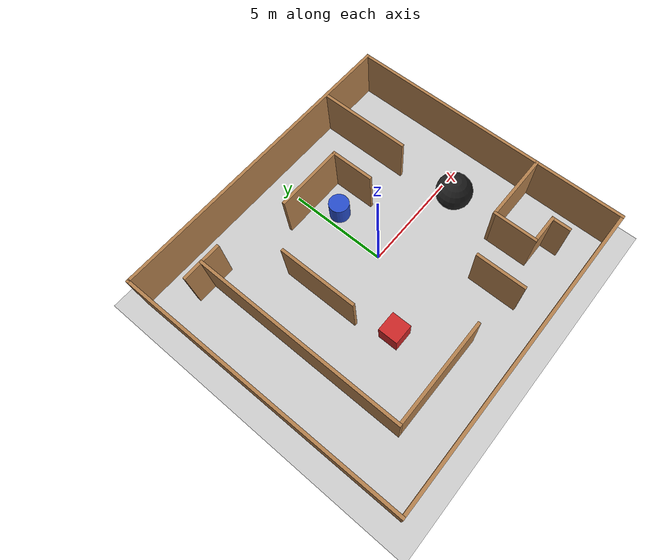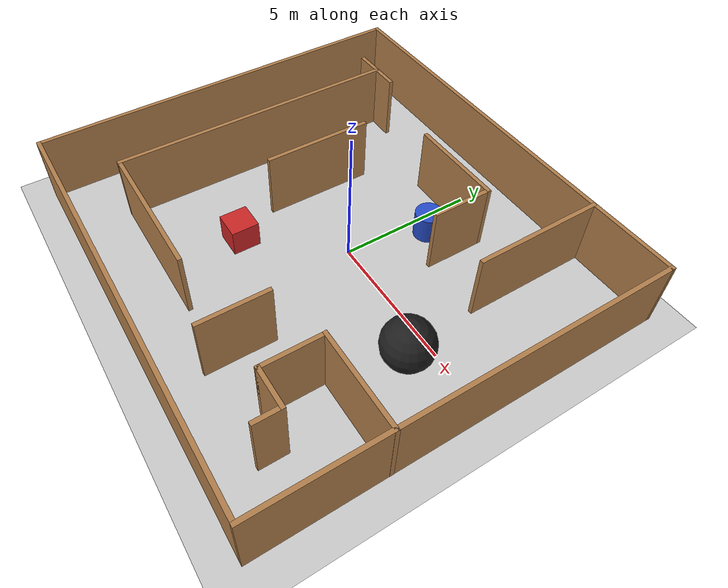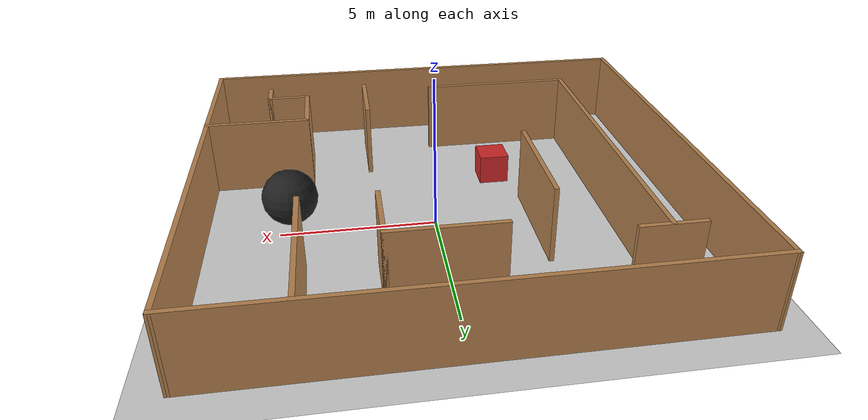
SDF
<sdf version="1.7">
 <world name="default">
  <light name="sun" type="directional">
   <pose>0 0 10 0 -0 0</pose>
   <diffuse>0.8 0.8 0.8 1</diffuse>
   <specular>0.2 0.2 0.2 1</specular>
   <attenuation>
    <range>1000</range>
    <constant>0.9</constant>
    <linear>0.01</linear>
    <quadratic>0.001</quadratic>
   </attenuation>
   <direction>-0.5 0.1 -0.9</direction>
   <spot><inner_angle>0</inner_angle><outer_angle>0</outer_angle><falloff>0</falloff></spot>
  </light>
  <model name="ground_plane">
   <static>1</static>
   <link name="link">
    <collision name="collision">
     <geometry><plane><normal>0 0 1</normal><size>100 100</size></plane></geometry>
     <surface>
      <contact><collide_bitmask>65535</collide_bitmask></contact>
      <friction><ode><mu>100</mu><mu2>50</mu2></ode></friction>
     </surface>
    </collision>
    <visual name="visual">
     <cast_shadows>0</cast_shadows>
     <geometry><plane><normal>0 0 1</normal><size>100 100</size></plane></geometry>
     <material>
      <script><uri>file://media/materials/scripts/gazebo.material</uri><name>Gazebo/Grey</name></script>
     </material>
    </visual>
   </link>
  </model>
  <gravity>0 0 -9.8</gravity>
  <magnetic_field>6e-06 2.3e-05 -4.2e-05</magnetic_field>
  <atmosphere type="adiabatic"/>
  <physics type="ode">
   <max_step_size>0.001</max_step_size>
   <real_time_factor>1</real_time_factor>
   <real_time_update_rate>1000</real_time_update_rate>
  </physics>
  <scene><ambient>0.4 0.4 0.4 1</ambient><background>0.7 0.7 0.7 1</background><shadows>1</shadows></scene>
  <spherical_coordinates>
   <surface_model>EARTH_WGS84</surface_model>
   <latitude_deg>0</latitude_deg>
   <longitude_deg>0</longitude_deg>
   <elevation>0</elevation>
   <heading_deg>0</heading_deg>
  </spherical_coordinates>
  <model name="map_eddie_bot">
   <pose>-0.440167 -0.562829 0 0 -0 0</pose>
   <link name="Wall_30">
    <collision name="Wall_30_Collision">
     <geometry><box><size>14.5741 0.15 2.5</size></box></geometry>
     <pose>0 0 1.25 0 -0 0</pose>
    </collision>
    <visual name="Wall_30_Visual">
     <pose>0 0 1.25 0 -0 0</pose>
     <geometry><box><size>14.5741 0.15 2.5</size></box></geometry>
     <material>
      <script><uri>file://media/materials/scripts/gazebo.material</uri><name>Gazebo/Wood</name></script>
      <ambient>1 1 1 1</ambient>
     </material>
     <meta><layer>0</layer></meta>
    </visual>
    <pose>7.78261 0 0 0 -0 -1.57322</pose>
   </link>
   <link name="Wall_35">
    <collision name="Wall_35_Collision">
     <geometry><box><size>15.75 0.15 2.5</size></box></geometry>
     <pose>0 0 1.25 0 -0 0</pose>
    </collision>
    <visual name="Wall_35_Visual">
     <pose>0 0 1.25 0 -0 0</pose>
     <geometry><box><size>15.75 0.15 2.5</size></box></geometry>
     <material>
      <script><uri>file://media/materials/scripts/gazebo.material</uri><name>Gazebo/Wood</name></script>
      <ambient>1 1 1 1</ambient>
     </material>
     <meta><layer>0</layer></meta>
    </visual>
    <pose>0.000104 7.21205 0 0 -0 3.14159</pose>
   </link>
   <link name="Wall_36">
    <collision name="Wall_36_Collision">
     <geometry><box><size>14.5743 0.15 2.5</size></box></geometry>
     <pose>0 0 1.25 0 -0 0</pose>
    </collision>
    <visual name="Wall_36_Visual">
     <pose>0 0 1.25 0 -0 0</pose>
     <geometry><box><size>14.5743 0.15 2.5</size></box></geometry>
     <material>
      <script><uri>file://media/materials/scripts/gazebo.material</uri><name>Gazebo/Wood</name></script>
      <ambient>1 1 1 1</ambient>
     </material>
     <meta><layer>0</layer></meta>
    </visual>
    <pose>-7.76235 0 0 0 -0 -1.56559</pose>
   </link>
   <link name="Wall_38">
    <collision name="Wall_38_Collision">
     <geometry><box><size>15.5 0.15 2.5</size></box></geometry>
     <pose>0 0 1.25 0 -0 0</pose>
    </collision>
    <visual name="Wall_38_Visual">
     <pose>0 0 1.25 0 -0 0</pose>
     <geometry><box><size>15.5 0.15 2.5</size></box></geometry>
     <material>
      <script><uri>file://media/materials/scripts/gazebo.material</uri><name>Gazebo/Wood</name></script>
      <ambient>1 1 1 1</ambient>
     </material>
     <meta><layer>0</layer></meta>
    </visual>
    <pose>-0.049797 -7.21205 0 0 -0 0</pose>
   </link>
   <link name="Wall_40">
    <collision name="Wall_40_Collision">
     <geometry><box><size>10.75 0.15 2.5</size></box></geometry>
     <pose>0 0 1.25 0 -0 0</pose>
    </collision>
    <visual name="Wall_40_Visual">
     <pose>0 0 1.25 0 -0 0</pose>
     <geometry><box><size>10.75 0.15 2.5</size></box></geometry>
     <material>
      <script><uri>file://media/materials/scripts/gazebo.material</uri><name>Gazebo/Wood</name></script>
      <ambient>1 1 1 1</ambient>
     </material>
     <meta><layer>0</layer></meta>
    </visual>
    <pose>-5.27932 0.1577 0 0 -0 -1.5708</pose>
   </link>
   <link name="Wall_42">
    <collision name="Wall_42_Collision">
     <geometry><box><size>5.25 0.15 2.5</size></box></geometry>
     <pose>0 0 1.25 0 -0 0</pose>
    </collision>
    <visual name="Wall_42_Visual">
     <pose>0 0 1.25 0 -0 0</pose>
     <geometry><box><size>5.25 0.15 2.5</size></box></geometry>
     <material>
      <script><uri>file://media/materials/scripts/gazebo.material</uri><name>Gazebo/Wood</name></script>
      <ambient>1 1 1 1</ambient>
     </material>
     <meta><layer>0</layer></meta>
    </visual>
    <pose>-2.72932 -5.1423 0 0 -0 0</pose>
   </link>
   <link name="Wall_44">
    <collision name="Wall_44_Collision">
     <geometry><box><size>2.5 0.15 2.5</size></box></geometry>
     <pose>0 0 1.25 0 -0 0</pose>
    </collision>
    <visual name="Wall_44_Visual">
     <pose>0 0 1.25 0 -0 0</pose>
     <geometry><box><size>2.5 0.15 2.5</size></box></geometry>
     <material>
      <script><uri>file://media/materials/scripts/gazebo.material</uri><name>Gazebo/Wood</name></script>
      <ambient>1 1 1 1</ambient>
     </material>
     <meta><layer>0</layer></meta>
    </visual>
    <pose>2.30443 -4.54475 0 0 -0 -1.5708</pose>
   </link>
   <link name="Wall_48">
    <collision name="Wall_48_Collision">
     <geometry><box><size>4.75 0.15 2.5</size></box></geometry>
     <pose>0 0 1.25 0 -0 0</pose>
    </collision>
    <visual name="Wall_48_Visual">
     <pose>0 0 1.25 0 -0 0</pose>
     <geometry><box><size>4.75 0.15 2.5</size></box></geometry>
     <material>
      <script><uri>file://media/materials/scripts/gazebo.material</uri><name>Gazebo/Wood</name></script>
      <ambient>1 1 1 1</ambient>
     </material>
     <meta><layer>0</layer></meta>
    </visual>
    <pose>4.66715 4.89888 0 0 -0 -1.5708</pose>
   </link>
   <link name="Wall_50">
    <collision name="Wall_50_Collision">
     <geometry><box><size>4 0.15 2.5</size></box></geometry>
     <pose>0 0 1.25 0 -0 0</pose>
    </collision>
    <visual name="Wall_50_Visual">
     <pose>0 0 1.25 0 -0 0</pose>
     <geometry><box><size>4 0.15 2.5</size></box></geometry>
     <material>
      <script><uri>file://media/materials/scripts/gazebo.material</uri><name>Gazebo/Wood</name></script>
      <ambient>1 1 1 1</ambient>
     </material>
     <meta><layer>0</layer></meta>
    </visual>
    <pose>-2.7243 1.25877 0 0 -0 -1.5708</pose>
   </link>
   <link name="Wall_52">
    <collision name="Wall_52_Collision">
     <geometry><box><size>3.5 0.15 2.5</size></box></geometry>
     <pose>0 0 1.25 0 -0 0</pose>
    </collision>
    <visual name="Wall_52_Visual">
     <pose>0 0 1.25 0 -0 0</pose>
     <geometry><box><size>3.5 0.15 2.5</size></box></geometry>
     <material>
      <script><uri>file://media/materials/scripts/gazebo.material</uri><name>Gazebo/Wood</name></script>
      <ambient>1 1 1 1</ambient>
     </material>
     <meta><layer>0</layer></meta>
    </visual>
    <pose>6.1064 -2.77451 0 0 -0 3.14159</pose>
   </link>
   <link name="Wall_53">
    <collision name="Wall_53_Collision">
     <geometry><box><size>2.25 0.15 2.5</size></box></geometry>
     <pose>0 0 1.25 0 -0 0</pose>
    </collision>
    <visual name="Wall_53_Visual">
     <pose>0 0 1.25 0 -0 0</pose>
     <geometry><box><size>2.25 0.15 2.5</size></box></geometry>
     <material>
      <script><uri>file://media/materials/scripts/gazebo.material</uri><name>Gazebo/Wood</name></script>
      <ambient>1 1 1 1</ambient>
     </material>
     <meta><layer>0</layer></meta>
    </visual>
    <pose>4.4314 -3.82451 0 0 -0 -1.5708</pose>
   </link>
   <link name="Wall_54">
    <collision name="Wall_54_Collision">
     <geometry><box><size>1.5 0.15 2.5</size></box></geometry>
     <pose>0 0 1.25 0 -0 0</pose>
    </collision>
    <visual name="Wall_54_Visual">
     <pose>0 0 1.25 0 -0 0</pose>
     <geometry><box><size>1.5 0.15 2.5</size></box></geometry>
     <material>
      <script><uri>file://media/materials/scripts/gazebo.material</uri><name>Gazebo/Wood</name></script>
      <ambient>1 1 1 1</ambient>
     </material>
     <meta><layer>0</layer></meta>
    </visual>
    <pose>5.1064 -4.87451 0 0 -0 0</pose>
   </link>
   <link name="Wall_55">
    <collision name="Wall_55_Collision">
     <geometry><box><size>1 0.15 2.5</size></box></geometry>
     <pose>0 0 1.25 0 -0 0</pose>
    </collision>
    <visual name="Wall_55_Visual">
     <pose>0 0 1.25 0 -0 0</pose>
     <geometry><box><size>1 0.15 2.5</size></box></geometry>
     <material>
      <script><uri>file://media/materials/scripts/gazebo.material</uri><name>Gazebo/Wood</name></script>
      <ambient>1 1 1 1</ambient>
     </material>
     <meta><layer>0</layer></meta>
    </visual>
    <pose>5.7814 -5.29951 0 0 -0 -1.5708</pose>
   </link>
   <link name="Wall_57">
    <collision name="Wall_57_Collision">
     <geometry><box><size>2 0.15 2.5</size></box></geometry>
     <pose>0 0 1.25 0 -0 0</pose>
    </collision>
    <visual name="Wall_57_Visual">
     <pose>0 0 1.25 0 -0 0</pose>
     <geometry><box><size>2 0.15 2.5</size></box></geometry>
     <material>
      <script><uri>file://media/materials/scripts/gazebo.material</uri><name>Gazebo/Wood</name></script>
      <ambient>1 1 1 1</ambient>
     </material>
     <meta><layer>0</layer></meta>
    </visual>
    <pose>-5.2788 5.49071 0 0 -0 0</pose>
   </link>
   <link name="Wall_59">
    <collision name="Wall_59_Collision">
     <geometry><box><size>3.5 0.15 2.5</size></box></geometry>
     <pose>0 0 1.25 0 -0 0</pose>
    </collision>
    <visual name="Wall_59_Visual">
     <pose>0 0 1.25 0 -0 0</pose>
     <geometry><box><size>3.5 0.15 2.5</size></box></geometry>
     <material>
      <script><uri>file://media/materials/scripts/gazebo.material</uri><name>Gazebo/Wood</name></script>
      <ambient>1 1 1 1</ambient>
     </material>
     <meta><layer>0</layer></meta>
    </visual>
    <pose>0.702125 4.72596 0 0 -0 0</pose>
   </link>
   <link name="Wall_60">
    <collision name="Wall_60_Collision">
     <geometry><box><size>2.25 0.15 2.5</size></box></geometry>
     <pose>0 0 1.25 0 -0 0</pose>
    </collision>
    <visual name="Wall_60_Visual">
     <pose>0 0 1.25 0 -0 0</pose>
     <geometry><box><size>2.25 0.15 2.5</size></box></geometry>
     <material>
      <script><uri>file://media/materials/scripts/gazebo.material</uri><name>Gazebo/Wood</name></script>
      <ambient>1 1 1 1</ambient>
     </material>
     <meta><layer>0</layer></meta>
    </visual>
    <pose>2.37712 3.67596 0 0 -0 -1.5708</pose>
   </link>
   <static>1</static>
  </model>
  <model name="unit_box">
   <link name="link">
    <inertial>
     <mass>1</mass>
     <inertia>
      <ixx>0.166667</ixx>
      <ixy>0</ixy>
      <ixz>0</ixz>
      <iyy>0.166667</iyy>
      <iyz>0</iyz>
      <izz>0.166667</izz>
     </inertia>
    </inertial>
    <visual name="visual">
     <geometry><box><size>1 1 1</size></box></geometry>
     <material>
      <script><name>Gazebo/Red</name><uri>file://media/materials/scripts/gazebo.material</uri></script>
      <shader type="pixel"><normal_map>__default__</normal_map></shader>
      <ambient>1 0 0 1</ambient>
      <diffuse>1 0 0 1</diffuse>
      <specular>0.1 0.1 0.1 1</specular>
      <emissive>0 0 0 1</emissive>
     </material>
    </visual>
    <collision name="collision">
     <geometry><box><size>1 1 1</size></box></geometry>
     <surface>
      <friction>
       <ode><mu>1</mu><mu2>1</mu2><fdir1>0 0 0</fdir1><slip1>0</slip1><slip2>0</slip2></ode>
       <torsional>
        <coefficient>1</coefficient>
        <patch_radius>0</patch_radius>
        <surface_radius>0</surface_radius>
        <use_patch_radius>1</use_patch_radius>
        <ode><slip>0</slip></ode>
       </torsional>
      </friction>
      <bounce><restitution_coefficient>0</restitution_coefficient><threshold>1e+06</threshold></bounce>
      <contact>
       <collide_without_contact>0</collide_without_contact>
       <collide_without_contact_bitmask>1</collide_without_contact_bitmask>
       <collide_bitmask>1</collide_bitmask>
       <ode>
        <soft_cfm>0</soft_cfm>
        <soft_erp>0.2</soft_erp>
        <kp>1e+13</kp>
        <kd>1</kd>
        <max_vel>0.01</max_vel>
        <min_depth>0</min_depth>
       </ode>
       <bullet>
        <split_impulse>1</split_impulse>
        <split_impulse_penetration_threshold>-0.01</split_impulse_penetration_threshold>
        <soft_cfm>0</soft_cfm>
        <soft_erp>0.2</soft_erp>
        <kp>1e+13</kp>
        <kd>1</kd>
       </bullet>
      </contact>
     </surface>
    </collision>
   </link>
   <static>0</static>
   <pose>-2.4692 -2.91509 0.5 0 -0 0</pose>
  </model>
  <model name="unit_sphere">
   <link name="link">
    <inertial>
     <mass>1</mass>
     <inertia><ixx>0.1</ixx><ixy>0</ixy><ixz>0</ixz><iyy>0.1</iyy><iyz>0</iyz><izz>0.1</izz></inertia>
    </inertial>
    <visual name="visual">
     <geometry><sphere><radius>0.9</radius></sphere></geometry>
     <material>
      <script><name>Gazebo/Black</name><uri>file://media/materials/scripts/gazebo.material</uri></script>
      <shader type="pixel"><normal_map>__default__</normal_map></shader>
      <ambient>0.3 0.3 0.3 1</ambient>
      <diffuse>0.7 0.7 0.7 1</diffuse>
      <specular>0.01 0.01 0.01 1</specular>
      <emissive>0 0 0 1</emissive>
     </material>
    </visual>
    <collision name="collision">
     <geometry><sphere><radius>0.5</radius></sphere></geometry>
     <surface>
      <friction>
       <ode><mu>1</mu><mu2>1</mu2><fdir1>0 0 0</fdir1><slip1>0</slip1><slip2>0</slip2></ode>
       <torsional>
        <coefficient>1</coefficient>
        <patch_radius>0</patch_radius>
        <surface_radius>0</surface_radius>
        <use_patch_radius>1</use_patch_radius>
        <ode><slip>0</slip></ode>
       </torsional>
      </friction>
      <bounce><restitution_coefficient>0</restitution_coefficient><threshold>1e+06</threshold></bounce>
      <contact>
       <collide_without_contact>0</collide_without_contact>
       <collide_without_contact_bitmask>1</collide_without_contact_bitmask>
       <collide_bitmask>1</collide_bitmask>
       <ode>
        <soft_cfm>0</soft_cfm>
        <soft_erp>0.2</soft_erp>
        <kp>1e+13</kp>
        <kd>1</kd>
        <max_vel>0.01</max_vel>
        <min_depth>0</min_depth>
       </ode>
       <bullet>
        <split_impulse>1</split_impulse>
        <split_impulse_penetration_threshold>-0.01</split_impulse_penetration_threshold>
        <soft_cfm>0</soft_cfm>
        <soft_erp>0.2</soft_erp>
        <kp>1e+13</kp>
        <kd>1</kd>
       </bullet>
      </contact>
     </surface>
    </collision>
   </link>
   <static>0</static>
   <pose>4.63757 -0.865978 0.892397 0 -0 0</pose>
  </model>
  <model name="unit_cylinder">
   <link name="link">
    <inertial>
     <mass>1</mass>
     <inertia><ixx>0.145833</ixx><ixy>0</ixy><ixz>0</ixz><iyy>0.145833</iyy><iyz>0</iyz><izz>0.125</izz></inertia>
    </inertial>
    <visual name="visual">
     <geometry><cylinder><radius>0.5</radius><length>1</length></cylinder></geometry>
     <material>
      <script><name>Gazebo/Blue</name><uri>file://media/materials/scripts/gazebo.material</uri></script>
      <shader type="pixel"><normal_map>__default__</normal_map></shader>
      <ambient>0 0 1 1</ambient>
      <diffuse>0 0 1 1</diffuse>
      <specular>0.1 0.1 0.1 1</specular>
      <emissive>0 0 0 1</emissive>
     </material>
    </visual>
    <collision name="collision">
     <geometry><cylinder><radius>0.5</radius><length>1</length></cylinder></geometry>
     <surface>
      <friction>
       <ode><mu>1</mu><mu2>1</mu2><fdir1>0 0 0</fdir1><slip1>0</slip1><slip2>0</slip2></ode>
       <torsional>
        <coefficient>1</coefficient>
        <patch_radius>0</patch_radius>
        <surface_radius>0</surface_radius>
        <use_patch_radius>1</use_patch_radius>
        <ode><slip>0</slip></ode>
       </torsional>
      </friction>
      <bounce><restitution_coefficient>0</restitution_coefficient><threshold>1e+06</threshold></bounce>
      <contact>
       <collide_without_contact>0</collide_without_contact>
       <collide_without_contact_bitmask>1</collide_without_contact_bitmask>
       <collide_bitmask>1</collide_bitmask>
       <ode>
        <soft_cfm>0</soft_cfm>
        <soft_erp>0.2</soft_erp>
        <kp>1e+13</kp>
        <kd>1</kd>
        <max_vel>0.01</max_vel>
        <min_depth>0</min_depth>
       </ode>
       <bullet>
        <split_impulse>1</split_impulse>
        <split_impulse_penetration_threshold>-0.01</split_impulse_penetration_threshold>
        <soft_cfm>0</soft_cfm>
        <soft_erp>0.2</soft_erp>
        <kp>1e+13</kp>
        <kd>1</kd>
       </bullet>
      </contact>
     </surface>
    </collision>
   </link>
   <static>0</static>
   <pose>0.653982 2.91201 0.5 0 -0 0</pose>
  </model>
  <light name="user_spot_light_0" type="spot">
   <pose>-0.084856 0.050171 1 0 -0 0</pose>
   <diffuse>0.5 0.5 0.5 1</diffuse>
   <specular>0.1 0.1 0.1 1</specular>
   <direction>0 0 -1</direction>
   <attenuation>
    <range>20</range>
    <constant>0.5</constant>
    <linear>0.01</linear>
    <quadratic>0.001</quadratic>
   </attenuation>
   <cast_shadows>0</cast_shadows>
   <spot><inner_angle>0.6</inner_angle><outer_angle>1</outer_angle><falloff>1</falloff></spot>
  </light>
  <light name="user_directional_light_0" type="directional">
   <pose>-0.223578 -0.576624 1 0 -0 0</pose>
   <diffuse>0.5 0.5 0.5 1</diffuse>
   <specular>0.1 0.1 0.1 1</specular>
   <direction>0.1 0.1 -0.9</direction>
   <attenuation>
    <range>20</range>
    <constant>0.5</constant>
    <linear>0.01</linear>
    <quadratic>0.001</quadratic>
   </attenuation>
  </light>
 </world>
</sdf>
